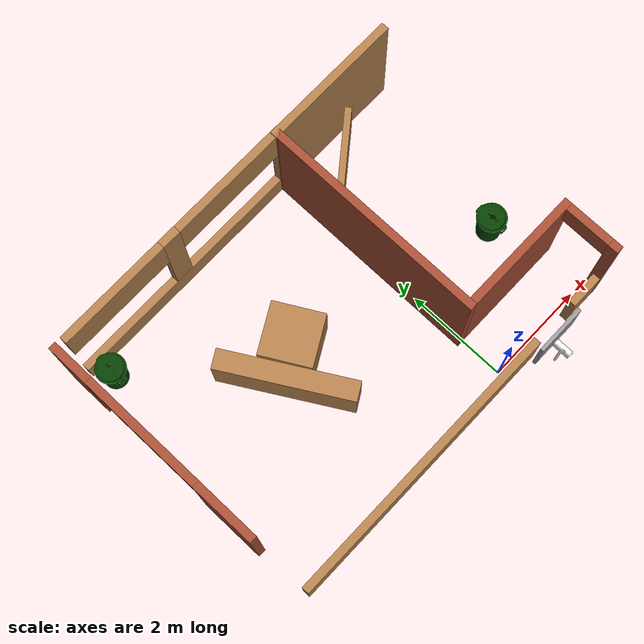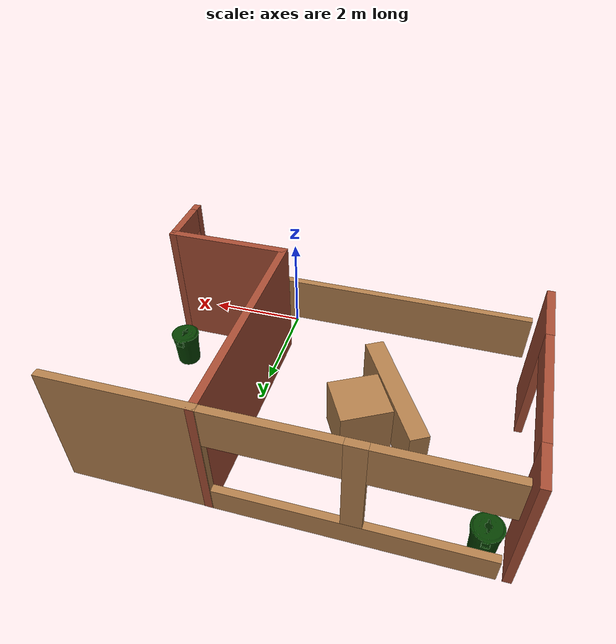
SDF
<sdf version="1.6">
 <model name="turtlebot3_house003">
  <link name="link_0">
   <inertial>
    <mass>0.972893</mass>
    <inertia>
     <ixx>0.61609</ixx>
     <ixy>0</ixy>
     <ixz>0</ixz>
     <iyy>0.0927031</iyy>
     <iyz>0</iyz>
     <izz>0.546645</izz>
    </inertia>
   </inertial>
   <pose>-2.73637 2.54892 0.5 0 -0 0.527725</pose>
   <visual name="visual">
    <geometry><box><size>0.378723 2.56887 1</size></box></geometry>
    <material>
     <lighting>1</lighting>
     <script><uri>file://media/materials/scripts/gazebo.material</uri><name>Gazebo/Wood</name></script>
     <shader type="vertex"><normal_map>__default__</normal_map></shader>
     <ambient>1 1 1 1</ambient>
     <diffuse>1 1 1 1</diffuse>
     <specular>0.2 0.2 0.2 1</specular>
     <emissive>0 0 0 1</emissive>
    </material>
   </visual>
   <collision name="collision">
    <geometry><box><size>0.378723 2.56887 1</size></box></geometry>
    <surface>
     <friction>
      <ode><mu>1</mu><mu2>1</mu2><fdir1>0 0 0</fdir1><slip1>0</slip1><slip2>0</slip2></ode>
      <torsional>
       <coefficient>1</coefficient>
       <patch_radius>0</patch_radius>
       <surface_radius>0</surface_radius>
       <use_patch_radius>1</use_patch_radius>
       <ode><slip>0</slip></ode>
      </torsional>
     </friction>
     <bounce><restitution_coefficient>0</restitution_coefficient><threshold>1e+06</threshold></bounce>
     <contact>
      <collide_without_contact>0</collide_without_contact>
      <collide_without_contact_bitmask>1</collide_without_contact_bitmask>
      <collide_bitmask>1</collide_bitmask>
      <ode>
       <soft_cfm>0</soft_cfm>
       <soft_erp>0.2</soft_erp>
       <kp>1e+13</kp>
       <kd>1</kd>
       <max_vel>0.01</max_vel>
       <min_depth>0</min_depth>
      </ode>
      <bullet>
       <split_impulse>1</split_impulse>
       <split_impulse_penetration_threshold>-0.01</split_impulse_penetration_threshold>
       <soft_cfm>0</soft_cfm>
       <soft_erp>0.2</soft_erp>
       <kp>1e+13</kp>
       <kd>1</kd>
      </bullet>
     </contact>
    </surface>
   </collision>
  </link>
  <link name="link_1">
   <inertial>
    <mass>1</mass>
    <inertia>
     <ixx>0.166667</ixx>
     <ixy>0</ixy>
     <ixz>0</ixz>
     <iyy>0.166667</iyy>
     <iyz>0</iyz>
     <izz>0.166667</izz>
    </inertia>
   </inertial>
   <pose>-2.1521 2.97321 0.5 0 -0 0.5102</pose>
   <visual name="visual">
    <geometry><box><size>1 1 1</size></box></geometry>
    <material>
     <lighting>1</lighting>
     <script><uri>file://media/materials/scripts/gazebo.material</uri><name>Gazebo/Wood</name></script>
     <shader type="vertex"><normal_map>__default__</normal_map></shader>
     <ambient>1 1 1 1</ambient>
     <diffuse>1 1 1 1</diffuse>
     <specular>0.2 0.2 0.2 1</specular>
     <emissive>0 0 0 1</emissive>
    </material>
   </visual>
   <collision name="collision">
    <geometry><box><size>1 1 1</size></box></geometry>
    <surface>
     <friction>
      <ode><mu>1</mu><mu2>1</mu2><fdir1>0 0 0</fdir1><slip1>0</slip1><slip2>0</slip2></ode>
      <torsional>
       <coefficient>1</coefficient>
       <patch_radius>0</patch_radius>
       <surface_radius>0</surface_radius>
       <use_patch_radius>1</use_patch_radius>
       <ode><slip>0</slip></ode>
      </torsional>
     </friction>
     <bounce><restitution_coefficient>0</restitution_coefficient><threshold>1e+06</threshold></bounce>
     <contact>
      <collide_without_contact>0</collide_without_contact>
      <collide_without_contact_bitmask>1</collide_without_contact_bitmask>
      <collide_bitmask>1</collide_bitmask>
      <ode>
       <soft_cfm>0</soft_cfm>
       <soft_erp>0.2</soft_erp>
       <kp>1e+13</kp>
       <kd>1</kd>
       <max_vel>0.01</max_vel>
       <min_depth>0</min_depth>
      </ode>
      <bullet>
       <split_impulse>1</split_impulse>
       <split_impulse_penetration_threshold>-0.01</split_impulse_penetration_threshold>
       <soft_cfm>0</soft_cfm>
       <soft_erp>0.2</soft_erp>
       <kp>1e+13</kp>
       <kd>1</kd>
      </bullet>
     </contact>
    </surface>
   </collision>
  </link>
  <link name="link_4">
   <inertial>
    <mass>0.245189</mass>
    <inertia>
     <ixx>0.0207559</ixx>
     <ixy>0</ixy>
     <ixz>0</ixz>
     <iyy>0.0980108</iyy>
     <iyz>0</iyz>
     <izz>0.0779019</izz>
    </inertia>
   </inertial>
   <pose>0.814116 4.5417 0.5 0 -0 0.663168</pose>
   <visual name="visual">
    <geometry><box><size>1.94855 0.125817 1</size></box></geometry>
    <material>
     <lighting>1</lighting>
     <script><uri>file://media/materials/scripts/gazebo.material</uri><name>Gazebo/Wood</name></script>
     <shader type="vertex"><normal_map>__default__</normal_map></shader>
     <ambient>1 1 1 1</ambient>
     <diffuse>1 1 1 1</diffuse>
     <specular>0.2 0.2 0.2 1</specular>
     <emissive>0 0 0 1</emissive>
    </material>
   </visual>
   <collision name="collision">
    <geometry><box><size>1.94855 0.125817 1</size></box></geometry>
    <surface>
     <friction>
      <ode><mu>1</mu><mu2>1</mu2><fdir1>0 0 0</fdir1><slip1>0</slip1><slip2>0</slip2></ode>
      <torsional>
       <coefficient>1</coefficient>
       <patch_radius>0</patch_radius>
       <surface_radius>0</surface_radius>
       <use_patch_radius>1</use_patch_radius>
       <ode><slip>0</slip></ode>
      </torsional>
     </friction>
     <bounce><restitution_coefficient>0</restitution_coefficient><threshold>1e+06</threshold></bounce>
     <contact>
      <collide_without_contact>0</collide_without_contact>
      <collide_without_contact_bitmask>1</collide_without_contact_bitmask>
      <collide_bitmask>1</collide_bitmask>
      <ode>
       <soft_cfm>0</soft_cfm>
       <soft_erp>0.2</soft_erp>
       <kp>1e+13</kp>
       <kd>1</kd>
       <max_vel>0.01</max_vel>
       <min_depth>0</min_depth>
      </ode>
      <bullet>
       <split_impulse>1</split_impulse>
       <split_impulse_penetration_threshold>-0.01</split_impulse_penetration_threshold>
       <soft_cfm>0</soft_cfm>
       <soft_erp>0.2</soft_erp>
       <kp>1e+13</kp>
       <kd>1</kd>
      </bullet>
     </contact>
    </surface>
   </collision>
  </link>
  <link name="turtlebot3_house002::Wall_101">
   <pose>-0.05 3.1 0 0 0 -1.5708</pose>
   <visual name="Wall_101_Visual">
    <pose>0 0 1.25 0 -0 0</pose>
    <geometry><box><size>4.5 0.15 2.5</size></box></geometry>
    <material>
     <script><uri>file://media/materials/scripts/gazebo.material</uri><name>Gazebo/Bricks</name></script>
     <ambient>1 1 1 1</ambient>
     <diffuse>1 1 1 1</diffuse>
     <specular>0.2 0.2 0.2 1</specular>
     <emissive>0 0 0 1</emissive>
    </material>
   </visual>
   <collision name="Wall_101_Collision">
    <pose>0 0 1.25 0 -0 0</pose>
    <geometry><box><size>4.5 0.15 2.5</size></box></geometry>
    <surface>
     <friction>
      <ode><mu>1</mu><mu2>1</mu2><fdir1>0 0 0</fdir1><slip1>0</slip1><slip2>0</slip2></ode>
      <torsional>
       <coefficient>1</coefficient>
       <patch_radius>0</patch_radius>
       <surface_radius>0</surface_radius>
       <use_patch_radius>1</use_patch_radius>
       <ode><slip>0</slip></ode>
      </torsional>
     </friction>
     <bounce><restitution_coefficient>0</restitution_coefficient><threshold>1e+06</threshold></bounce>
     <contact>
      <collide_without_contact>0</collide_without_contact>
      <collide_without_contact_bitmask>1</collide_without_contact_bitmask>
      <collide_bitmask>1</collide_bitmask>
      <ode>
       <soft_cfm>0</soft_cfm>
       <soft_erp>0.2</soft_erp>
       <kp>1e+13</kp>
       <kd>1</kd>
       <max_vel>0.01</max_vel>
       <min_depth>0</min_depth>
      </ode>
      <bullet>
       <split_impulse>1</split_impulse>
       <split_impulse_penetration_threshold>-0.01</split_impulse_penetration_threshold>
       <soft_cfm>0</soft_cfm>
       <soft_erp>0.2</soft_erp>
       <kp>1e+13</kp>
       <kd>1</kd>
      </bullet>
     </contact>
    </surface>
   </collision>
  </link>
  <link name="turtlebot3_house002::Wall_108">
   <pose>-1.37512 -0.17488 0 0 -0 0</pose>
   <inertial>
    <mass>1</mass>
    <inertia><ixx>1</ixx><ixy>0</ixy><ixz>0</ixz><iyy>1</iyy><iyz>0</iyz><izz>1</izz></inertia>
   </inertial>
   <visual name="Wall_108_Visual_0">
    <pose>-0.856324 0 0.5 0 -0 0</pose>
    <geometry><box><size>5.78735 0.15 1</size></box></geometry>
    <material>
     <script><uri>file://media/materials/scripts/gazebo.material</uri><name>Gazebo/Wood</name></script>
     <ambient>1 1 1 1</ambient>
     <diffuse>1 1 1 1</diffuse>
     <specular>0.2 0.2 0.2 1</specular>
     <emissive>0 0 0 1</emissive>
     <shader type="vertex"><normal_map>__default__</normal_map></shader>
    </material>
   </visual>
   <visual name="Wall_108_Visual_1">
    <pose>3.34368 0 0.5 0 -0 0</pose>
    <geometry><box><size>0.812647 0.15 1</size></box></geometry>
    <material>
     <script><uri>file://media/materials/scripts/gazebo.material</uri><name>Gazebo/Wood</name></script>
     <ambient>1 1 1 1</ambient>
     <diffuse>1 1 1 1</diffuse>
     <specular>0.2 0.2 0.2 1</specular>
     <emissive>0 0 0 1</emissive>
     <shader type="vertex"><normal_map>__default__</normal_map></shader>
    </material>
   </visual>
   <collision name="Wall_108_Collision_0">
    <pose>-0.856324 0 0.5 0 -0 0</pose>
    <geometry><box><size>5.78735 0.15 1</size></box></geometry>
    <surface>
     <friction>
      <ode><mu>1</mu><mu2>1</mu2><fdir1>0 0 0</fdir1><slip1>0</slip1><slip2>0</slip2></ode>
      <torsional>
       <coefficient>1</coefficient>
       <patch_radius>0</patch_radius>
       <surface_radius>0</surface_radius>
       <use_patch_radius>1</use_patch_radius>
       <ode><slip>0</slip></ode>
      </torsional>
     </friction>
     <bounce><restitution_coefficient>0</restitution_coefficient><threshold>1e+06</threshold></bounce>
     <contact>
      <collide_without_contact>0</collide_without_contact>
      <collide_without_contact_bitmask>1</collide_without_contact_bitmask>
      <collide_bitmask>1</collide_bitmask>
      <ode>
       <soft_cfm>0</soft_cfm>
       <soft_erp>0.2</soft_erp>
       <kp>1e+13</kp>
       <kd>1</kd>
       <max_vel>0.01</max_vel>
       <min_depth>0</min_depth>
      </ode>
      <bullet>
       <split_impulse>1</split_impulse>
       <split_impulse_penetration_threshold>-0.01</split_impulse_penetration_threshold>
       <soft_cfm>0</soft_cfm>
       <soft_erp>0.2</soft_erp>
       <kp>1e+13</kp>
       <kd>1</kd>
      </bullet>
     </contact>
    </surface>
   </collision>
   <collision name="Wall_108_Collision_1">
    <pose>3.34368 0 0.5 0 -0 0</pose>
    <geometry><box><size>0.812647 0.15 1</size></box></geometry>
    <surface>
     <friction>
      <ode><mu>1</mu><mu2>1</mu2><fdir1>0 0 0</fdir1><slip1>0</slip1><slip2>0</slip2></ode>
      <torsional>
       <coefficient>1</coefficient>
       <patch_radius>0</patch_radius>
       <surface_radius>0</surface_radius>
       <use_patch_radius>1</use_patch_radius>
       <ode><slip>0</slip></ode>
      </torsional>
     </friction>
     <bounce><restitution_coefficient>0</restitution_coefficient><threshold>1e+06</threshold></bounce>
     <contact>
      <collide_without_contact>0</collide_without_contact>
      <collide_without_contact_bitmask>1</collide_without_contact_bitmask>
      <collide_bitmask>1</collide_bitmask>
      <ode>
       <soft_cfm>0</soft_cfm>
       <soft_erp>0.2</soft_erp>
       <kp>1e+13</kp>
       <kd>1</kd>
       <max_vel>0.01</max_vel>
       <min_depth>0</min_depth>
      </ode>
      <bullet>
       <split_impulse>1</split_impulse>
       <split_impulse_penetration_threshold>-0.01</split_impulse_penetration_threshold>
       <soft_cfm>0</soft_cfm>
       <soft_erp>0.2</soft_erp>
       <kp>1e+13</kp>
       <kd>1</kd>
      </bullet>
     </contact>
    </surface>
   </collision>
  </link>
  <link name="turtlebot3_house002::Wall_82">
   <pose>1.25 5.26876 0 0 -0 3.14159</pose>
   <visual name="Wall_82_Visual">
    <pose>0 0 1.25 0 -0 0</pose>
    <geometry><box><size>2.75 0.15 2.5</size></box></geometry>
    <material>
     <script><uri>file://media/materials/scripts/gazebo.material</uri><name>Gazebo/Wood</name></script>
     <ambient>1 1 1 1</ambient>
     <diffuse>1 1 1 1</diffuse>
     <specular>0.2 0.2 0.2 1</specular>
     <emissive>0 0 0 1</emissive>
    </material>
   </visual>
   <collision name="Wall_82_Collision">
    <pose>0 0 1.25 0 -0 0</pose>
    <geometry><box><size>2.75 0.15 2.5</size></box></geometry>
    <surface>
     <friction>
      <ode><mu>1</mu><mu2>1</mu2><fdir1>0 0 0</fdir1><slip1>0</slip1><slip2>0</slip2></ode>
      <torsional>
       <coefficient>1</coefficient>
       <patch_radius>0</patch_radius>
       <surface_radius>0</surface_radius>
       <use_patch_radius>1</use_patch_radius>
       <ode><slip>0</slip></ode>
      </torsional>
     </friction>
     <bounce><restitution_coefficient>0</restitution_coefficient><threshold>1e+06</threshold></bounce>
     <contact>
      <collide_without_contact>0</collide_without_contact>
      <collide_without_contact_bitmask>1</collide_without_contact_bitmask>
      <collide_bitmask>1</collide_bitmask>
      <ode>
       <soft_cfm>0</soft_cfm>
       <soft_erp>0.2</soft_erp>
       <kp>1e+13</kp>
       <kd>1</kd>
       <max_vel>0.01</max_vel>
       <min_depth>0</min_depth>
      </ode>
      <bullet>
       <split_impulse>1</split_impulse>
       <split_impulse_penetration_threshold>-0.01</split_impulse_penetration_threshold>
       <soft_cfm>0</soft_cfm>
       <soft_erp>0.2</soft_erp>
       <kp>1e+13</kp>
       <kd>1</kd>
      </bullet>
     </contact>
    </surface>
   </collision>
  </link>
  <link name="turtlebot3_house002::Wall_83">
   <pose>-2.475 5.275 0 0 -0 3.14159</pose>
   <visual name="Wall_83_Visual_1">
    <pose>0.080993 0 0.25 0 -0 0</pose>
    <geometry><box><size>4.83801 0.15 0.5</size></box></geometry>
    <material>
     <script><uri>file://media/materials/scripts/gazebo.material</uri><name>Gazebo/Wood</name></script>
     <ambient>1 1 1 1</ambient>
     <diffuse>1 1 1 1</diffuse>
     <specular>0.2 0.2 0.2 1</specular>
     <emissive>0 0 0 1</emissive>
    </material>
   </visual>
   <visual name="Wall_83_Visual_3">
    <pose>0.110246 0 1.5 0 -0 0</pose>
    <geometry><box><size>0.37052 0.15 2</size></box></geometry>
    <material>
     <script><uri>file://media/materials/scripts/gazebo.material</uri><name>Gazebo/Wood</name></script>
     <ambient>1 1 1 1</ambient>
     <diffuse>1 1 1 1</diffuse>
     <specular>0.2 0.2 0.2 1</specular>
     <emissive>0 0 0 1</emissive>
    </material>
   </visual>
   <visual name="Wall_83_Visual_6">
    <pose>1.39775 0 2.1 0 -0 0</pose>
    <geometry><box><size>2.20449 0.15 0.8</size></box></geometry>
    <material>
     <script><uri>file://media/materials/scripts/gazebo.material</uri><name>Gazebo/Wood</name></script>
     <ambient>1 1 1 1</ambient>
     <diffuse>1 1 1 1</diffuse>
     <specular>0.2 0.2 0.2 1</specular>
     <emissive>0 0 0 1</emissive>
    </material>
   </visual>
   <visual name="Wall_83_Visual_5">
    <pose>1.39775 0 2.1 0 -0 0</pose>
    <geometry><box><size>2.20449 0.15 0.8</size></box></geometry>
    <material>
     <script><uri>file://media/materials/scripts/gazebo.material</uri><name>Gazebo/Wood</name></script>
     <ambient>1 1 1 1</ambient>
     <diffuse>1 1 1 1</diffuse>
     <specular>0.2 0.2 0.2 1</specular>
     <emissive>0 0 0 1</emissive>
    </material>
   </visual>
   <visual name="Wall_83_Visual_2">
    <pose>0.110246 0 1.5 0 -0 0</pose>
    <geometry><box><size>0.37052 0.15 2</size></box></geometry>
    <material>
     <script><uri>file://media/materials/scripts/gazebo.material</uri><name>Gazebo/Wood</name></script>
     <ambient>1 1 1 1</ambient>
     <diffuse>1 1 1 1</diffuse>
     <specular>0.2 0.2 0.2 1</specular>
     <emissive>0 0 0 1</emissive>
    </material>
   </visual>
   <visual name="Wall_83_Visual_0">
    <pose>-2.41901 0 1.25 0 -0 0</pose>
    <geometry><box><size>0.161986 0.15 2.5</size></box></geometry>
    <material>
     <script><uri>file://media/materials/scripts/gazebo.material</uri><name>Gazebo/Wood</name></script>
     <ambient>1 1 1 1</ambient>
     <diffuse>1 1 1 1</diffuse>
     <specular>0.2 0.2 0.2 1</specular>
     <emissive>0 0 0 1</emissive>
    </material>
   </visual>
   <visual name="Wall_83_Visual_4">
    <pose>-1.20651 0 2.1 0 -0 0</pose>
    <geometry><box><size>2.263 0.15 0.8</size></box></geometry>
    <material>
     <script><uri>file://media/materials/scripts/gazebo.material</uri><name>Gazebo/Wood</name></script>
     <ambient>1 1 1 1</ambient>
     <diffuse>1 1 1 1</diffuse>
     <specular>0.2 0.2 0.2 1</specular>
     <emissive>0 0 0 1</emissive>
    </material>
   </visual>
   <collision name="Wall_83_Collision_3">
    <pose>0.110246 0 1.5 0 -0 0</pose>
    <geometry><box><size>0.37052 0.15 2</size></box></geometry>
    <surface>
     <friction>
      <ode><mu>1</mu><mu2>1</mu2><fdir1>0 0 0</fdir1><slip1>0</slip1><slip2>0</slip2></ode>
      <torsional>
       <coefficient>1</coefficient>
       <patch_radius>0</patch_radius>
       <surface_radius>0</surface_radius>
       <use_patch_radius>1</use_patch_radius>
       <ode><slip>0</slip></ode>
      </torsional>
     </friction>
     <bounce><restitution_coefficient>0</restitution_coefficient><threshold>1e+06</threshold></bounce>
     <contact>
      <collide_without_contact>0</collide_without_contact>
      <collide_without_contact_bitmask>1</collide_without_contact_bitmask>
      <collide_bitmask>1</collide_bitmask>
      <ode>
       <soft_cfm>0</soft_cfm>
       <soft_erp>0.2</soft_erp>
       <kp>1e+13</kp>
       <kd>1</kd>
       <max_vel>0.01</max_vel>
       <min_depth>0</min_depth>
      </ode>
      <bullet>
       <split_impulse>1</split_impulse>
       <split_impulse_penetration_threshold>-0.01</split_impulse_penetration_threshold>
       <soft_cfm>0</soft_cfm>
       <soft_erp>0.2</soft_erp>
       <kp>1e+13</kp>
       <kd>1</kd>
      </bullet>
     </contact>
    </surface>
   </collision>
   <collision name="Wall_83_Collision_5">
    <pose>1.39775 0 2.1 0 -0 0</pose>
    <geometry><box><size>2.20449 0.15 0.8</size></box></geometry>
    <surface>
     <friction>
      <ode><mu>1</mu><mu2>1</mu2><fdir1>0 0 0</fdir1><slip1>0</slip1><slip2>0</slip2></ode>
      <torsional>
       <coefficient>1</coefficient>
       <patch_radius>0</patch_radius>
       <surface_radius>0</surface_radius>
       <use_patch_radius>1</use_patch_radius>
       <ode><slip>0</slip></ode>
      </torsional>
     </friction>
     <bounce><restitution_coefficient>0</restitution_coefficient><threshold>1e+06</threshold></bounce>
     <contact>
      <collide_without_contact>0</collide_without_contact>
      <collide_without_contact_bitmask>1</collide_without_contact_bitmask>
      <collide_bitmask>1</collide_bitmask>
      <ode>
       <soft_cfm>0</soft_cfm>
       <soft_erp>0.2</soft_erp>
       <kp>1e+13</kp>
       <kd>1</kd>
       <max_vel>0.01</max_vel>
       <min_depth>0</min_depth>
      </ode>
      <bullet>
       <split_impulse>1</split_impulse>
       <split_impulse_penetration_threshold>-0.01</split_impulse_penetration_threshold>
       <soft_cfm>0</soft_cfm>
       <soft_erp>0.2</soft_erp>
       <kp>1e+13</kp>
       <kd>1</kd>
      </bullet>
     </contact>
    </surface>
   </collision>
   <collision name="Wall_83_Collision_0">
    <pose>-2.41901 0 1.25 0 -0 0</pose>
    <geometry><box><size>0.161986 0.15 2.5</size></box></geometry>
    <surface>
     <friction>
      <ode><mu>1</mu><mu2>1</mu2><fdir1>0 0 0</fdir1><slip1>0</slip1><slip2>0</slip2></ode>
      <torsional>
       <coefficient>1</coefficient>
       <patch_radius>0</patch_radius>
       <surface_radius>0</surface_radius>
       <use_patch_radius>1</use_patch_radius>
       <ode><slip>0</slip></ode>
      </torsional>
     </friction>
     <bounce><restitution_coefficient>0</restitution_coefficient><threshold>1e+06</threshold></bounce>
     <contact>
      <collide_without_contact>0</collide_without_contact>
      <collide_without_contact_bitmask>1</collide_without_contact_bitmask>
      <collide_bitmask>1</collide_bitmask>
      <ode>
       <soft_cfm>0</soft_cfm>
       <soft_erp>0.2</soft_erp>
       <kp>1e+13</kp>
       <kd>1</kd>
       <max_vel>0.01</max_vel>
       <min_depth>0</min_depth>
      </ode>
      <bullet>
       <split_impulse>1</split_impulse>
       <split_impulse_penetration_threshold>-0.01</split_impulse_penetration_threshold>
       <soft_cfm>0</soft_cfm>
       <soft_erp>0.2</soft_erp>
       <kp>1e+13</kp>
       <kd>1</kd>
      </bullet>
     </contact>
    </surface>
   </collision>
   <collision name="Wall_83_Collision_4">
    <pose>-1.20651 0 2.1 0 -0 0</pose>
    <geometry><box><size>2.263 0.15 0.8</size></box></geometry>
    <surface>
     <friction>
      <ode><mu>1</mu><mu2>1</mu2><fdir1>0 0 0</fdir1><slip1>0</slip1><slip2>0</slip2></ode>
      <torsional>
       <coefficient>1</coefficient>
       <patch_radius>0</patch_radius>
       <surface_radius>0</surface_radius>
       <use_patch_radius>1</use_patch_radius>
       <ode><slip>0</slip></ode>
      </torsional>
     </friction>
     <bounce><restitution_coefficient>0</restitution_coefficient><threshold>1e+06</threshold></bounce>
     <contact>
      <collide_without_contact>0</collide_without_contact>
      <collide_without_contact_bitmask>1</collide_without_contact_bitmask>
      <collide_bitmask>1</collide_bitmask>
      <ode>
       <soft_cfm>0</soft_cfm>
       <soft_erp>0.2</soft_erp>
       <kp>1e+13</kp>
       <kd>1</kd>
       <max_vel>0.01</max_vel>
       <min_depth>0</min_depth>
      </ode>
      <bullet>
       <split_impulse>1</split_impulse>
       <split_impulse_penetration_threshold>-0.01</split_impulse_penetration_threshold>
       <soft_cfm>0</soft_cfm>
       <soft_erp>0.2</soft_erp>
       <kp>1e+13</kp>
       <kd>1</kd>
      </bullet>
     </contact>
    </surface>
   </collision>
   <collision name="Wall_83_Collision_1">
    <pose>0.080993 0 0.25 0 -0 0</pose>
    <geometry><box><size>4.83801 0.15 0.5</size></box></geometry>
    <surface>
     <friction>
      <ode><mu>1</mu><mu2>1</mu2><fdir1>0 0 0</fdir1><slip1>0</slip1><slip2>0</slip2></ode>
      <torsional>
       <coefficient>1</coefficient>
       <patch_radius>0</patch_radius>
       <surface_radius>0</surface_radius>
       <use_patch_radius>1</use_patch_radius>
       <ode><slip>0</slip></ode>
      </torsional>
     </friction>
     <bounce><restitution_coefficient>0</restitution_coefficient><threshold>1e+06</threshold></bounce>
     <contact>
      <collide_without_contact>0</collide_without_contact>
      <collide_without_contact_bitmask>1</collide_without_contact_bitmask>
      <collide_bitmask>1</collide_bitmask>
      <ode>
       <soft_cfm>0</soft_cfm>
       <soft_erp>0.2</soft_erp>
       <kp>1e+13</kp>
       <kd>1</kd>
       <max_vel>0.01</max_vel>
       <min_depth>0</min_depth>
      </ode>
      <bullet>
       <split_impulse>1</split_impulse>
       <split_impulse_penetration_threshold>-0.01</split_impulse_penetration_threshold>
       <soft_cfm>0</soft_cfm>
       <soft_erp>0.2</soft_erp>
       <kp>1e+13</kp>
       <kd>1</kd>
      </bullet>
     </contact>
    </surface>
   </collision>
   <collision name="Wall_83_Collision_2">
    <pose>0.110246 0 1.5 0 -0 0</pose>
    <geometry><box><size>0.37052 0.15 2</size></box></geometry>
    <surface>
     <friction>
      <ode><mu>1</mu><mu2>1</mu2><fdir1>0 0 0</fdir1><slip1>0</slip1><slip2>0</slip2></ode>
      <torsional>
       <coefficient>1</coefficient>
       <patch_radius>0</patch_radius>
       <surface_radius>0</surface_radius>
       <use_patch_radius>1</use_patch_radius>
       <ode><slip>0</slip></ode>
      </torsional>
     </friction>
     <bounce><restitution_coefficient>0</restitution_coefficient><threshold>1e+06</threshold></bounce>
     <contact>
      <collide_without_contact>0</collide_without_contact>
      <collide_without_contact_bitmask>1</collide_without_contact_bitmask>
      <collide_bitmask>1</collide_bitmask>
      <ode>
       <soft_cfm>0</soft_cfm>
       <soft_erp>0.2</soft_erp>
       <kp>1e+13</kp>
       <kd>1</kd>
       <max_vel>0.01</max_vel>
       <min_depth>0</min_depth>
      </ode>
      <bullet>
       <split_impulse>1</split_impulse>
       <split_impulse_penetration_threshold>-0.01</split_impulse_penetration_threshold>
       <soft_cfm>0</soft_cfm>
       <soft_erp>0.2</soft_erp>
       <kp>1e+13</kp>
       <kd>1</kd>
      </bullet>
     </contact>
    </surface>
   </collision>
   <collision name="Wall_83_Collision_6">
    <pose>1.39775 0 2.1 0 -0 0</pose>
    <geometry><box><size>2.20449 0.15 0.8</size></box></geometry>
    <surface>
     <friction>
      <ode><mu>1</mu><mu2>1</mu2><fdir1>0 0 0</fdir1><slip1>0</slip1><slip2>0</slip2></ode>
      <torsional>
       <coefficient>1</coefficient>
       <patch_radius>0</patch_radius>
       <surface_radius>0</surface_radius>
       <use_patch_radius>1</use_patch_radius>
       <ode><slip>0</slip></ode>
      </torsional>
     </friction>
     <bounce><restitution_coefficient>0</restitution_coefficient><threshold>1e+06</threshold></bounce>
     <contact>
      <collide_without_contact>0</collide_without_contact>
      <collide_without_contact_bitmask>1</collide_without_contact_bitmask>
      <collide_bitmask>1</collide_bitmask>
      <ode>
       <soft_cfm>0</soft_cfm>
       <soft_erp>0.2</soft_erp>
       <kp>1e+13</kp>
       <kd>1</kd>
       <max_vel>0.01</max_vel>
       <min_depth>0</min_depth>
      </ode>
      <bullet>
       <split_impulse>1</split_impulse>
       <split_impulse_penetration_threshold>-0.01</split_impulse_penetration_threshold>
       <soft_cfm>0</soft_cfm>
       <soft_erp>0.2</soft_erp>
       <kp>1e+13</kp>
       <kd>1</kd>
      </bullet>
     </contact>
    </surface>
   </collision>
  </link>
  <link name="turtlebot3_house002::Wall_90">
   <pose>1.125 0.925 0 0 -0 0</pose>
   <visual name="Wall_90_Visual">
    <pose>0 0 1.25 0 -0 0</pose>
    <geometry><box><size>2.5 0.15 2.5</size></box></geometry>
    <material>
     <script><uri>file://media/materials/scripts/gazebo.material</uri><name>Gazebo/Bricks</name></script>
     <ambient>1 1 1 1</ambient>
     <diffuse>1 1 1 1</diffuse>
     <specular>0.2 0.2 0.2 1</specular>
     <emissive>0 0 0 1</emissive>
    </material>
   </visual>
   <collision name="Wall_90_Collision">
    <pose>0 0 1.25 0 -0 0</pose>
    <geometry><box><size>2.5 0.15 2.5</size></box></geometry>
    <surface>
     <friction>
      <ode><mu>1</mu><mu2>1</mu2><fdir1>0 0 0</fdir1><slip1>0</slip1><slip2>0</slip2></ode>
      <torsional>
       <coefficient>1</coefficient>
       <patch_radius>0</patch_radius>
       <surface_radius>0</surface_radius>
       <use_patch_radius>1</use_patch_radius>
       <ode><slip>0</slip></ode>
      </torsional>
     </friction>
     <bounce><restitution_coefficient>0</restitution_coefficient><threshold>1e+06</threshold></bounce>
     <contact>
      <collide_without_contact>0</collide_without_contact>
      <collide_without_contact_bitmask>1</collide_without_contact_bitmask>
      <collide_bitmask>1</collide_bitmask>
      <ode>
       <soft_cfm>0</soft_cfm>
       <soft_erp>0.2</soft_erp>
       <kp>1e+13</kp>
       <kd>1</kd>
       <max_vel>0.01</max_vel>
       <min_depth>0</min_depth>
      </ode>
      <bullet>
       <split_impulse>1</split_impulse>
       <split_impulse_penetration_threshold>-0.01</split_impulse_penetration_threshold>
       <soft_cfm>0</soft_cfm>
       <soft_erp>0.2</soft_erp>
       <kp>1e+13</kp>
       <kd>1</kd>
      </bullet>
     </contact>
    </surface>
   </collision>
  </link>
  <link name="turtlebot3_house002::Wall_91">
   <pose>2.29994 0.37506 0 0 0 -1.57091</pose>
   <visual name="Wall_91_Visual_1">
    <pose>0.523499 0 1.25 0 -0 0</pose>
    <geometry><box><size>0.203002 0.15 2.5</size></box></geometry>
    <material>
     <script><uri>file://media/materials/scripts/gazebo.material</uri><name>Gazebo/Bricks</name></script>
     <ambient>1 1 1 1</ambient>
     <diffuse>1 1 1 1</diffuse>
     <specular>0.2 0.2 0.2 1</specular>
     <emissive>0 0 0 1</emissive>
    </material>
   </visual>
   <visual name="Wall_91_Visual_0">
    <pose>-0.551501 0 1.25 0 -0 0</pose>
    <geometry><box><size>0.146998 0.15 2.5</size></box></geometry>
    <material>
     <script><uri>file://media/materials/scripts/gazebo.material</uri><name>Gazebo/Bricks</name></script>
     <ambient>1 1 1 1</ambient>
     <diffuse>1 1 1 1</diffuse>
     <specular>0.2 0.2 0.2 1</specular>
     <emissive>0 0 0 1</emissive>
    </material>
   </visual>
   <visual name="Wall_91_Visual_2">
    <pose>-0.028002 0 2.25 0 -0 0</pose>
    <geometry><box><size>0.9 0.15 0.5</size></box></geometry>
    <material>
     <script><uri>file://media/materials/scripts/gazebo.material</uri><name>Gazebo/Bricks</name></script>
     <ambient>1 1 1 1</ambient>
     <diffuse>1 1 1 1</diffuse>
     <specular>0.2 0.2 0.2 1</specular>
     <emissive>0 0 0 1</emissive>
    </material>
   </visual>
   <collision name="Wall_91_Collision_2">
    <pose>-0.028002 0 2.25 0 -0 0</pose>
    <geometry><box><size>0.9 0.15 0.5</size></box></geometry>
    <surface>
     <friction>
      <ode><mu>1</mu><mu2>1</mu2><fdir1>0 0 0</fdir1><slip1>0</slip1><slip2>0</slip2></ode>
      <torsional>
       <coefficient>1</coefficient>
       <patch_radius>0</patch_radius>
       <surface_radius>0</surface_radius>
       <use_patch_radius>1</use_patch_radius>
       <ode><slip>0</slip></ode>
      </torsional>
     </friction>
     <bounce><restitution_coefficient>0</restitution_coefficient><threshold>1e+06</threshold></bounce>
     <contact>
      <collide_without_contact>0</collide_without_contact>
      <collide_without_contact_bitmask>1</collide_without_contact_bitmask>
      <collide_bitmask>1</collide_bitmask>
      <ode>
       <soft_cfm>0</soft_cfm>
       <soft_erp>0.2</soft_erp>
       <kp>1e+13</kp>
       <kd>1</kd>
       <max_vel>0.01</max_vel>
       <min_depth>0</min_depth>
      </ode>
      <bullet>
       <split_impulse>1</split_impulse>
       <split_impulse_penetration_threshold>-0.01</split_impulse_penetration_threshold>
       <soft_cfm>0</soft_cfm>
       <soft_erp>0.2</soft_erp>
       <kp>1e+13</kp>
       <kd>1</kd>
      </bullet>
     </contact>
    </surface>
   </collision>
   <collision name="Wall_91_Collision_1">
    <pose>0.523499 0 1.25 0 -0 0</pose>
    <geometry><box><size>0.203002 0.15 2.5</size></box></geometry>
    <surface>
     <friction>
      <ode><mu>1</mu><mu2>1</mu2><fdir1>0 0 0</fdir1><slip1>0</slip1><slip2>0</slip2></ode>
      <torsional>
       <coefficient>1</coefficient>
       <patch_radius>0</patch_radius>
       <surface_radius>0</surface_radius>
       <use_patch_radius>1</use_patch_radius>
       <ode><slip>0</slip></ode>
      </torsional>
     </friction>
     <bounce><restitution_coefficient>0</restitution_coefficient><threshold>1e+06</threshold></bounce>
     <contact>
      <collide_without_contact>0</collide_without_contact>
      <collide_without_contact_bitmask>1</collide_without_contact_bitmask>
      <collide_bitmask>1</collide_bitmask>
      <ode>
       <soft_cfm>0</soft_cfm>
       <soft_erp>0.2</soft_erp>
       <kp>1e+13</kp>
       <kd>1</kd>
       <max_vel>0.01</max_vel>
       <min_depth>0</min_depth>
      </ode>
      <bullet>
       <split_impulse>1</split_impulse>
       <split_impulse_penetration_threshold>-0.01</split_impulse_penetration_threshold>
       <soft_cfm>0</soft_cfm>
       <soft_erp>0.2</soft_erp>
       <kp>1e+13</kp>
       <kd>1</kd>
      </bullet>
     </contact>
    </surface>
   </collision>
   <collision name="Wall_91_Collision_0">
    <pose>-0.551501 0 1.25 0 -0 0</pose>
    <geometry><box><size>0.146998 0.15 2.5</size></box></geometry>
    <surface>
     <friction>
      <ode><mu>1</mu><mu2>1</mu2><fdir1>0 0 0</fdir1><slip1>0</slip1><slip2>0</slip2></ode>
      <torsional>
       <coefficient>1</coefficient>
       <patch_radius>0</patch_radius>
       <surface_radius>0</surface_radius>
       <use_patch_radius>1</use_patch_radius>
       <ode><slip>0</slip></ode>
      </torsional>
     </friction>
     <bounce><restitution_coefficient>0</restitution_coefficient><threshold>1e+06</threshold></bounce>
     <contact>
      <collide_without_contact>0</collide_without_contact>
      <collide_without_contact_bitmask>1</collide_without_contact_bitmask>
      <collide_bitmask>1</collide_bitmask>
      <ode>
       <soft_cfm>0</soft_cfm>
       <soft_erp>0.2</soft_erp>
       <kp>1e+13</kp>
       <kd>1</kd>
       <max_vel>0.01</max_vel>
       <min_depth>0</min_depth>
      </ode>
      <bullet>
       <split_impulse>1</split_impulse>
       <split_impulse_penetration_threshold>-0.01</split_impulse_penetration_threshold>
       <soft_cfm>0</soft_cfm>
       <soft_erp>0.2</soft_erp>
       <kp>1e+13</kp>
       <kd>1</kd>
      </bullet>
     </contact>
    </surface>
   </collision>
  </link>
  <link name="turtlebot3_house002::Wall_99">
   <pose>-5.15 3.1 0 0 -0 1.5708</pose>
   <visual name="Wall_99_Visual_0">
    <pose>-1.62116 0 1.25 0 -0 0</pose>
    <geometry><box><size>1.25768 0.15 2.5</size></box></geometry>
    <material>
     <script><uri>file://media/materials/scripts/gazebo.material</uri><name>Gazebo/Bricks</name></script>
     <ambient>1 1 1 1</ambient>
     <diffuse>1 1 1 1</diffuse>
     <specular>0.2 0.2 0.2 1</specular>
     <emissive>0 0 0 1</emissive>
    </material>
   </visual>
   <visual name="Wall_99_Visual_2">
    <pose>0.215786 0 2.25 0 -0 0</pose>
    <geometry><box><size>2.41621 0.15 0.5</size></box></geometry>
    <material>
     <script><uri>file://media/materials/scripts/gazebo.material</uri><name>Gazebo/Bricks</name></script>
     <ambient>1 1 1 1</ambient>
     <diffuse>1 1 1 1</diffuse>
     <specular>0.2 0.2 0.2 1</specular>
     <emissive>0 0 0 1</emissive>
    </material>
   </visual>
   <visual name="Wall_99_Visual_1">
    <pose>1.83695 0 1.25 0 -0 0</pose>
    <geometry><box><size>0.826108 0.15 2.5</size></box></geometry>
    <material>
     <script><uri>file://media/materials/scripts/gazebo.material</uri><name>Gazebo/Bricks</name></script>
     <ambient>1 1 1 1</ambient>
     <diffuse>1 1 1 1</diffuse>
     <specular>0.2 0.2 0.2 1</specular>
     <emissive>0 0 0 1</emissive>
    </material>
   </visual>
   <collision name="Wall_99_Collision_0">
    <pose>-1.62116 0 1.25 0 -0 0</pose>
    <geometry><box><size>1.25768 0.15 2.5</size></box></geometry>
    <surface>
     <friction>
      <ode><mu>1</mu><mu2>1</mu2><fdir1>0 0 0</fdir1><slip1>0</slip1><slip2>0</slip2></ode>
      <torsional>
       <coefficient>1</coefficient>
       <patch_radius>0</patch_radius>
       <surface_radius>0</surface_radius>
       <use_patch_radius>1</use_patch_radius>
       <ode><slip>0</slip></ode>
      </torsional>
     </friction>
     <bounce><restitution_coefficient>0</restitution_coefficient><threshold>1e+06</threshold></bounce>
     <contact>
      <collide_without_contact>0</collide_without_contact>
      <collide_without_contact_bitmask>1</collide_without_contact_bitmask>
      <collide_bitmask>1</collide_bitmask>
      <ode>
       <soft_cfm>0</soft_cfm>
       <soft_erp>0.2</soft_erp>
       <kp>1e+13</kp>
       <kd>1</kd>
       <max_vel>0.01</max_vel>
       <min_depth>0</min_depth>
      </ode>
      <bullet>
       <split_impulse>1</split_impulse>
       <split_impulse_penetration_threshold>-0.01</split_impulse_penetration_threshold>
       <soft_cfm>0</soft_cfm>
       <soft_erp>0.2</soft_erp>
       <kp>1e+13</kp>
       <kd>1</kd>
      </bullet>
     </contact>
    </surface>
   </collision>
   <collision name="Wall_99_Collision_1">
    <pose>1.83695 0 1.25 0 -0 0</pose>
    <geometry><box><size>0.826108 0.15 2.5</size></box></geometry>
    <surface>
     <friction>
      <ode><mu>1</mu><mu2>1</mu2><fdir1>0 0 0</fdir1><slip1>0</slip1><slip2>0</slip2></ode>
      <torsional>
       <coefficient>1</coefficient>
       <patch_radius>0</patch_radius>
       <surface_radius>0</surface_radius>
       <use_patch_radius>1</use_patch_radius>
       <ode><slip>0</slip></ode>
      </torsional>
     </friction>
     <bounce><restitution_coefficient>0</restitution_coefficient><threshold>1e+06</threshold></bounce>
     <contact>
      <collide_without_contact>0</collide_without_contact>
      <collide_without_contact_bitmask>1</collide_without_contact_bitmask>
      <collide_bitmask>1</collide_bitmask>
      <ode>
       <soft_cfm>0</soft_cfm>
       <soft_erp>0.2</soft_erp>
       <kp>1e+13</kp>
       <kd>1</kd>
       <max_vel>0.01</max_vel>
       <min_depth>0</min_depth>
      </ode>
      <bullet>
       <split_impulse>1</split_impulse>
       <split_impulse_penetration_threshold>-0.01</split_impulse_penetration_threshold>
       <soft_cfm>0</soft_cfm>
       <soft_erp>0.2</soft_erp>
       <kp>1e+13</kp>
       <kd>1</kd>
      </bullet>
     </contact>
    </surface>
   </collision>
   <collision name="Wall_99_Collision_2">
    <pose>0.215786 0 2.25 0 -0 0</pose>
    <geometry><box><size>2.41621 0.15 0.5</size></box></geometry>
    <surface>
     <friction>
      <ode><mu>1</mu><mu2>1</mu2><fdir1>0 0 0</fdir1><slip1>0</slip1><slip2>0</slip2></ode>
      <torsional>
       <coefficient>1</coefficient>
       <patch_radius>0</patch_radius>
       <surface_radius>0</surface_radius>
       <use_patch_radius>1</use_patch_radius>
       <ode><slip>0</slip></ode>
      </torsional>
     </friction>
     <bounce><restitution_coefficient>0</restitution_coefficient><threshold>1e+06</threshold></bounce>
     <contact>
      <collide_without_contact>0</collide_without_contact>
      <collide_without_contact_bitmask>1</collide_without_contact_bitmask>
      <collide_bitmask>1</collide_bitmask>
      <ode>
       <soft_cfm>0</soft_cfm>
       <soft_erp>0.2</soft_erp>
       <kp>1e+13</kp>
       <kd>1</kd>
       <max_vel>0.01</max_vel>
       <min_depth>0</min_depth>
      </ode>
      <bullet>
       <split_impulse>1</split_impulse>
       <split_impulse_penetration_threshold>-0.01</split_impulse_penetration_threshold>
       <soft_cfm>0</soft_cfm>
       <soft_erp>0.2</soft_erp>
       <kp>1e+13</kp>
       <kd>1</kd>
      </bullet>
     </contact>
    </surface>
   </collision>
  </link>
  <model name="Door001">
   <static>1</static>
   <pose>1.07527 -0.344746 0.5 0 -0 0</pose>
   <link name="link">
    <inertial>
     <mass>1</mass>
     <inertia>
      <ixx>0.166667</ixx>
      <ixy>0</ixy>
      <ixz>0</ixz>
      <iyy>0.166667</iyy>
      <iyz>0</iyz>
      <izz>0.166667</izz>
     </inertia>
    </inertial>
    <collision name="collision"><geometry><box><size>1 0.069697 1</size></box></geometry></collision>
    <visual name="visual">
     <geometry><box><size>1 0.069697 1</size></box></geometry>
     <material>
      <script><name>Gazebo/Grey</name><uri>file://media/materials/scripts/gazebo.material</uri></script>
     </material>
    </visual>
   </link>
  </model>
  <model name="Mailbox">
   <link name="link">
    <collision name="collision">
     <geometry><mesh><uri>model://mailbox/meshes/mailbox.dae</uri></mesh></geometry>
    </collision>
    <visual name="visual">
     <geometry><mesh><uri>model://mailbox/meshes/mailbox.dae</uri></mesh></geometry>
     <material>
      <script>
       <uri>model://mailbox/materials/scripts</uri>
       <uri>model://mailbox/materials/textures</uri>
       <name>Mailbox/Diffuse</name>
      </script>
     </material>
    </visual>
    <inertial>
     <inertia><ixx>1</ixx><ixy>0</ixy><ixz>0</ixz><iyy>1</iyy><iyz>0</iyz><izz>1</izz></inertia>
     <mass>1</mass>
    </inertial>
   </link>
   <pose>0.883462 -0.576236 0 0 0 -3.14159</pose>
  </model>
  <model name="first_2015_trash_can">
   <link name="link">
    <inertial>
     <pose>0 0 0.3683 0 -0 0</pose>
     <mass>4.83076</mass>
     <inertia>
      <ixx>0.281534</ixx>
      <ixy>0</ixy>
      <ixz>0</ixz>
      <iyy>0.281534</iyy>
      <iyz>0</iyz>
      <izz>0.126223</izz>
     </inertia>
    </inertial>
    <visual name="visual">
     <geometry><mesh><uri>model://first_2015_trash_can/meshes/trash_can.dae</uri></mesh></geometry>
    </visual>
    <collision name="collision">
     <geometry><mesh><uri>model://first_2015_trash_can/meshes/trash_can.dae</uri></mesh></geometry>
    </collision>
   </link>
   <pose>1.88346 1.91193 0 0 -0 0</pose>
  </model>
  <model name="first_2015_trash_can_0">
   <link name="link">
    <inertial>
     <pose>0 0 0.3683 0 -0 0</pose>
     <mass>4.83076</mass>
     <inertia>
      <ixx>0.281534</ixx>
      <ixy>0</ixy>
      <ixz>0</ixz>
      <iyy>0.281534</iyy>
      <iyz>0</iyz>
      <izz>0.126223</izz>
     </inertia>
    </inertial>
    <visual name="visual">
     <geometry><mesh><uri>model://first_2015_trash_can/meshes/trash_can.dae</uri></mesh></geometry>
    </visual>
    <collision name="collision">
     <geometry><mesh><uri>model://first_2015_trash_can/meshes/trash_can.dae</uri></mesh></geometry>
    </collision>
   </link>
   <pose>-4.69354 4.89439 0 0 -0 0</pose>
  </model>
  <static>1</static>
 </model>
</sdf>
